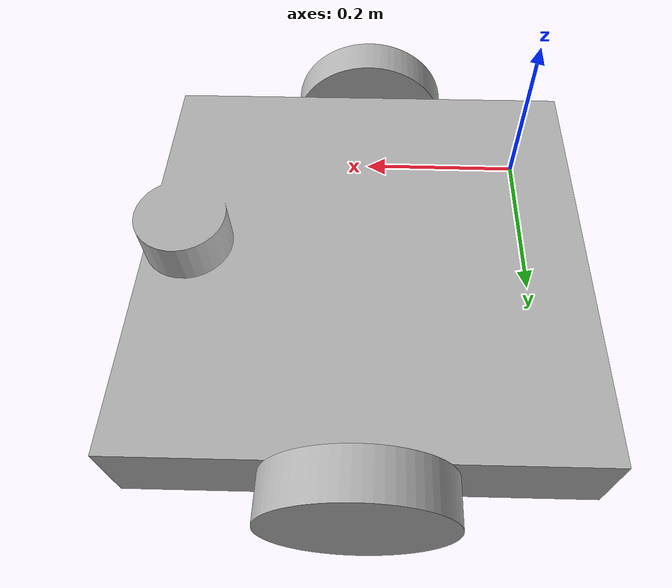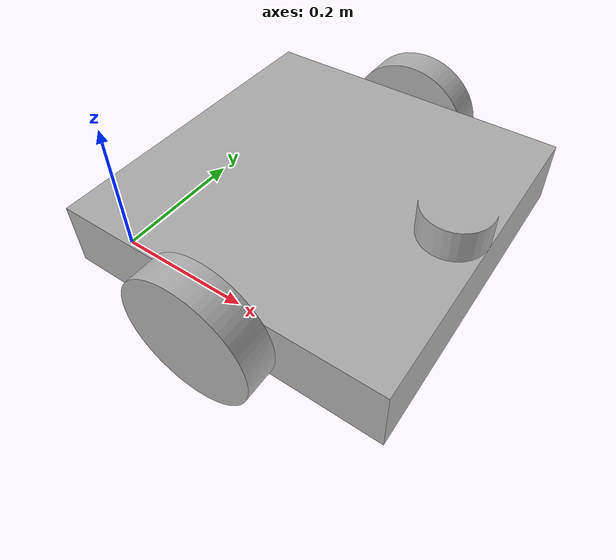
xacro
<?xml version="1.0" ?>
<robot name="v2" xmlns:xacro="http://www.ros.org/wiki/xacro">

<xacro:include filename="$(find v2_description)/urdf/materials.xacro" />
<xacro:include filename="$(find v2_description)/urdf/v2.trans" />
<xacro:include filename="$(find v2_description)/urdf/v2.gazebo" />
<link name="base_link">
  <inertial>
    <origin rpy="0 0 0" xyz="0.20303051835459715 0.2 0.029747456803783597"/>
    <mass value="27.47127572873484"/>
    <inertia ixx="0.579836" ixy="0.0" ixz="-0.006265" iyy="0.613232" iyz="0.0" izz="1.138637"/>
  </inertial>
  <visual>
    <origin rpy="0 0 0" xyz="0 0 0"/>
    <geometry>
      <mesh filename="package://v2_description/meshes/base_link.stl" scale="0.001 0.001 0.001"/>
    </geometry>
    <material name="silver"/>
  </visual>
  <collision>
    <origin rpy="0 0 0" xyz="0 0 0"/>
    <geometry>
      <mesh filename="package://v2_description/meshes/base_link.stl" scale="0.001 0.001 0.001"/>
    </geometry>
  </collision>
</link>

<link name="right_wheel_1">
  <inertial>
    <origin rpy="0 0 0" xyz="-5.551115123125783e-17 -0.024999999999999994 6.938893903907228e-18"/>
    <mass value="1.4608405839192535"/>
    <inertia ixx="0.003956" ixy="0.0" ixz="-0.0" iyy="0.007304" iyz="0.0" izz="0.003956"/>
  </inertial>
  <visual>
    <origin rpy="0 0 0" xyz="-0.2 0.05 -0.03"/>
    <geometry>
      <mesh filename="package://v2_description/meshes/right_wheel_1.stl" scale="0.001 0.001 0.001"/>
    </geometry>
    <material name="silver"/>
  </visual>
  <collision>
    <origin rpy="0 0 0" xyz="-0.2 0.05 -0.03"/>
    <geometry>
      <mesh filename="package://v2_description/meshes/right_wheel_1.stl" scale="0.001 0.001 0.001"/>
    </geometry>
  </collision>
</link>

<link name="left_wheel_1">
  <inertial>
    <origin rpy="0 0 0" xyz="-5.551115123125783e-17 0.02499999999999991 6.938893903907228e-18"/>
    <mass value="1.4608405839192535"/>
    <inertia ixx="0.003956" ixy="-0.0" ixz="-0.0" iyy="0.007304" iyz="-0.0" izz="0.003956"/>
  </inertial>
  <visual>
    <origin rpy="0 0 0" xyz="-0.2 -0.45 -0.03"/>
    <geometry>
      <mesh filename="package://v2_description/meshes/left_wheel_1.stl" scale="0.001 0.001 0.001"/>
    </geometry>
    <material name="silver"/>
  </visual>
  <collision>
    <origin rpy="0 0 0" xyz="-0.2 -0.45 -0.03"/>
    <geometry>
      <mesh filename="package://v2_description/meshes/left_wheel_1.stl" scale="0.001 0.001 0.001"/>
    </geometry>
  </collision>
</link>

<joint name="Rev1" type="continuous">
  <origin rpy="0 0 0" xyz="0.2 -0.05 0.03"/>
  <parent link="base_link"/>
  <child link="right_wheel_1"/>
  <axis xyz="0.0 -1.0 0.0"/>
</joint>

<joint name="Rev2" type="continuous">
  <origin rpy="0 0 0" xyz="0.2 0.45 0.03"/>
  <parent link="base_link"/>
  <child link="left_wheel_1"/>
  <axis xyz="0.0 1.0 0.0"/>
</joint>

</robot>

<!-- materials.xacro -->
<robot name="v2" xmlns:xacro="http://www.ros.org/wiki/xacro" >

<material name="silver">
  <color rgba="0.700 0.700 0.700 1.000"/>
</material>

</robot>

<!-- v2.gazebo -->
<robot name="v2" xmlns:xacro="http://www.ros.org/wiki/xacro" >

<xacro:property name="body_color" value="Gazebo/Silver" />

<gazebo>
  <plugin filename="libgazebo_ros_control.so" name="control"/>
</gazebo>
<gazebo reference="base_link">
  <material>${body_color}</material>
  <mu1>0.2</mu1>
  <mu2>0.2</mu2>
  <selfCollide>true</selfCollide>
  <gravity>true</gravity>
</gazebo>

<gazebo reference="right_wheel_1">
  <material>${body_color}</material>
  <mu1>0.2</mu1>
  <mu2>0.2</mu2>
  <selfCollide>true</selfCollide>
</gazebo>

<gazebo reference="left_wheel_1">
  <material>${body_color}</material>
  <mu1>0.2</mu1>
  <mu2>0.2</mu2>
  <selfCollide>true</selfCollide>
</gazebo>

</robot>
